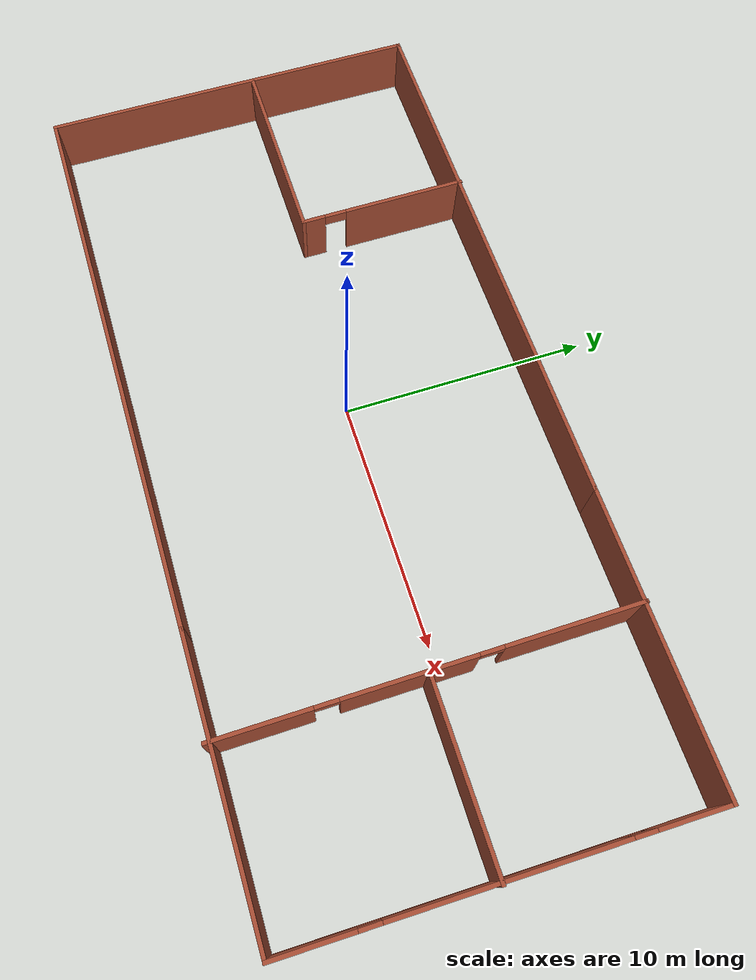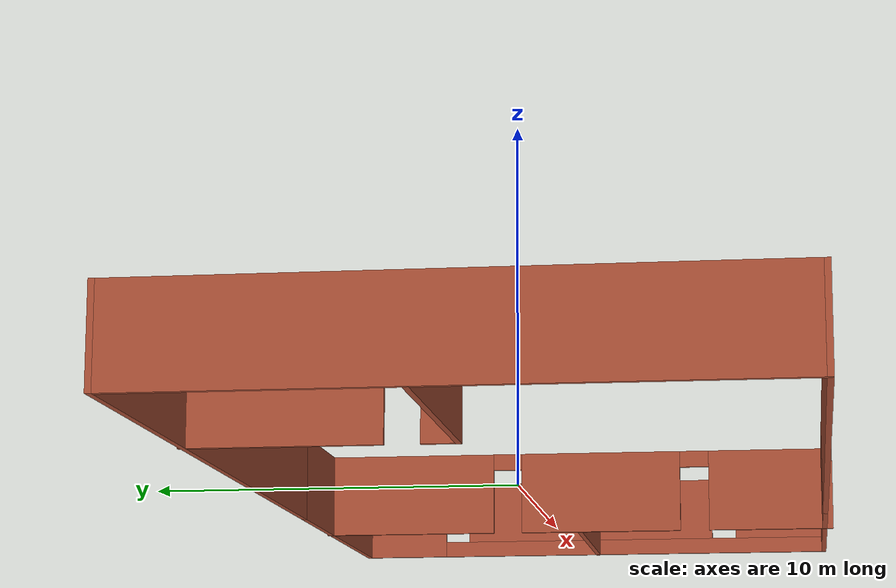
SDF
<?xml version='1.0'?>
<sdf version='1.6'>
  <model name='home'>
    <pose frame=''>1.27088 -0.535738 0 0 -0 0</pose>
    <link name='Wall_0'>
      <collision name='Wall_0_Collision'>
        <geometry>
          <box>
            <size>22.5 0.15 2.5</size>
          </box>
        </geometry>
        <pose frame=''>0 0 1.25 0 -0 0</pose>
      </collision>
      <visual name='Wall_0_Visual'>
        <pose frame=''>0 0 1.25 0 -0 0</pose>
        <geometry>
          <box>
            <size>22.5 0.15 2.5</size>
          </box>
        </geometry>
        <material>
          <script>
            <uri>file://media/materials/scripts/gazebo.material</uri>
            <name>Gazebo/Bricks</name>
          </script>
          <ambient>1 1 1 1</ambient>
        </material>
        <meta>
          <layer>0</layer>
        </meta>
      </visual>
      <pose frame=''>-5.67545 7.86796 0 0 -0 3.14159</pose>
    </link>
    <link name='Wall_1'>
      <collision name='Wall_1_Collision'>
        <geometry>
          <box>
            <size>15.75 0.15 2.5</size>
          </box>
        </geometry>
        <pose frame=''>0 0 1.25 0 -0 0</pose>
      </collision>
      <visual name='Wall_1_Visual'>
        <pose frame=''>0 0 1.25 0 -0 0</pose>
        <geometry>
          <box>
            <size>15.75 0.15 2.5</size>
          </box>
        </geometry>
        <material>
          <script>
            <uri>file://media/materials/scripts/gazebo.material</uri>
            <name>Gazebo/Bricks</name>
          </script>
          <ambient>1 1 1 1</ambient>
        </material>
        <meta>
          <layer>0</layer>
        </meta>
      </visual>
      <pose frame=''>-16.8504 0.067958 0 0 0 -1.5708</pose>
    </link>
    <link name='Wall_11'>
      <pose frame=''>9.90372 0 0 0 0 -1.5708</pose>
      <visual name='Wall_11_Visual_0'>
        <pose frame=''>-5.32645 0 1.25 0 -0 0</pose>
        <geometry>
          <box>
            <size>5.34709 0.15 2.5</size>
          </box>
        </geometry>
        <material>
          <script>
            <uri>file://media/materials/scripts/gazebo.material</uri>
            <name>Gazebo/Bricks</name>
          </script>
          <ambient>1 1 1 1</ambient>
        </material>
        <meta>
          <layer>0</layer>
        </meta>
      </visual>
      <collision name='Wall_11_Collision_0'>
        <geometry>
          <box>
            <size>5.34709 0.15 2.5</size>
          </box>
        </geometry>
        <pose frame=''>-5.32645 0 1.25 0 -0 0</pose>
      </collision>
      <visual name='Wall_11_Visual_1'>
        <pose frame=''>0.75043 0 1.25 0 -0 0</pose>
        <geometry>
          <box>
            <size>5.00668 0.15 2.5</size>
          </box>
        </geometry>
        <material>
          <script>
            <uri>file://media/materials/scripts/gazebo.material</uri>
            <name>Gazebo/Bricks</name>
          </script>
          <ambient>1 1 1 1</ambient>
        </material>
        <meta>
          <layer>0</layer>
        </meta>
      </visual>
      <collision name='Wall_11_Collision_1'>
        <geometry>
          <box>
            <size>5.00668 0.15 2.5</size>
          </box>
        </geometry>
        <pose frame=''>0.75043 0 1.25 0 -0 0</pose>
      </collision>
      <visual name='Wall_11_Visual_2'>
        <pose frame=''>6.07688 0 1.25 0 -0 0</pose>
        <geometry>
          <box>
            <size>3.84623 0.15 2.5</size>
          </box>
        </geometry>
        <material>
          <script>
            <uri>file://media/materials/scripts/gazebo.material</uri>
            <name>Gazebo/Bricks</name>
          </script>
          <ambient>1 1 1 1</ambient>
        </material>
        <meta>
          <layer>0</layer>
        </meta>
      </visual>
      <collision name='Wall_11_Collision_2'>
        <geometry>
          <box>
            <size>3.84623 0.15 2.5</size>
          </box>
        </geometry>
        <pose frame=''>6.07688 0 1.25 0 -0 0</pose>
      </collision>
      <visual name='Wall_11_Visual_3'>
        <pose frame=''>-2.20291 0 2.25 0 -0 0</pose>
        <geometry>
          <box>
            <size>0.9 0.15 0.5</size>
          </box>
        </geometry>
        <material>
          <script>
            <uri>file://media/materials/scripts/gazebo.material</uri>
            <name>Gazebo/Bricks</name>
          </script>
          <ambient>1 1 1 1</ambient>
        </material>
        <meta>
          <layer>0</layer>
        </meta>
      </visual>
      <collision name='Wall_11_Collision_3'>
        <geometry>
          <box>
            <size>0.9 0.15 0.5</size>
          </box>
        </geometry>
        <pose frame=''>-2.20291 0 2.25 0 -0 0</pose>
      </collision>
      <visual name='Wall_11_Visual_4'>
        <pose frame=''>3.70377 0 2.25 0 -0 0</pose>
        <geometry>
          <box>
            <size>0.9 0.15 0.5</size>
          </box>
        </geometry>
        <material>
          <script>
            <uri>file://media/materials/scripts/gazebo.material</uri>
            <name>Gazebo/Bricks</name>
          </script>
          <ambient>1 1 1 1</ambient>
        </material>
        <meta>
          <layer>0</layer>
        </meta>
      </visual>
      <collision name='Wall_11_Collision_4'>
        <geometry>
          <box>
            <size>0.9 0.15 0.5</size>
          </box>
        </geometry>
        <pose frame=''>3.70377 0 2.25 0 -0 0</pose>
      </collision>
    </link>
    <link name='Wall_13'>
      <collision name='Wall_13_Collision'>
        <geometry>
          <box>
            <size>7 0.15 2.5</size>
          </box>
        </geometry>
        <pose frame=''>0 0 1.25 0 -0 0</pose>
      </collision>
      <visual name='Wall_13_Visual'>
        <pose frame=''>0 0 1.25 0 -0 0</pose>
        <geometry>
          <box>
            <size>7 0.15 2.5</size>
          </box>
        </geometry>
        <material>
          <script>
            <uri>file://media/materials/scripts/gazebo.material</uri>
            <name>Gazebo/Bricks</name>
          </script>
          <ambient>1 1 1 1</ambient>
        </material>
        <meta>
          <layer>0</layer>
        </meta>
      </visual>
      <pose frame=''>13.3902 -0.073624 0 0 -0 0</pose>
    </link>
    <link name='Wall_15'>
      <pose frame=''>-8.92381 4.5 0 0 0 -1.5708</pose>
      <visual name='Wall_15_Visual_0'>
        <pose frame=''>-0.949509 0 1.25 0 -0 0</pose>
        <geometry>
          <box>
            <size>5.10098 0.15 2.5</size>
          </box>
        </geometry>
        <material>
          <script>
            <uri>file://media/materials/scripts/gazebo.material</uri>
            <name>Gazebo/Bricks</name>
          </script>
          <ambient>1 1 1 1</ambient>
        </material>
        <meta>
          <layer>0</layer>
        </meta>
      </visual>
      <collision name='Wall_15_Collision_0'>
        <geometry>
          <box>
            <size>5.10098 0.15 2.5</size>
          </box>
        </geometry>
        <pose frame=''>-0.949509 0 1.25 0 -0 0</pose>
      </collision>
      <visual name='Wall_15_Visual_1'>
        <pose frame=''>3.00049 0 1.25 0 -0 0</pose>
        <geometry>
          <box>
            <size>0.999019 0.15 2.5</size>
          </box>
        </geometry>
        <material>
          <script>
            <uri>file://media/materials/scripts/gazebo.material</uri>
            <name>Gazebo/Bricks</name>
          </script>
          <ambient>1 1 1 1</ambient>
        </material>
        <meta>
          <layer>0</layer>
        </meta>
      </visual>
      <collision name='Wall_15_Collision_1'>
        <geometry>
          <box>
            <size>0.999019 0.15 2.5</size>
          </box>
        </geometry>
        <pose frame=''>3.00049 0 1.25 0 -0 0</pose>
      </collision>
      <visual name='Wall_15_Visual_2'>
        <pose frame=''>2.05098 0 2.25 0 -0 0</pose>
        <geometry>
          <box>
            <size>0.9 0.15 0.5</size>
          </box>
        </geometry>
        <material>
          <script>
            <uri>file://media/materials/scripts/gazebo.material</uri>
            <name>Gazebo/Bricks</name>
          </script>
          <ambient>1 1 1 1</ambient>
        </material>
        <meta>
          <layer>0</layer>
        </meta>
      </visual>
      <collision name='Wall_15_Collision_2'>
        <geometry>
          <box>
            <size>0.9 0.15 0.5</size>
          </box>
        </geometry>
        <pose frame=''>2.05098 0 2.25 0 -0 0</pose>
      </collision>
    </link>
    <link name='Wall_16'>
      <collision name='Wall_16_Collision'>
        <geometry>
          <box>
            <size>8 0.15 2.5</size>
          </box>
        </geometry>
        <pose frame=''>0 0 1.25 0 -0 0</pose>
      </collision>
      <visual name='Wall_16_Visual'>
        <pose frame=''>0 0 1.25 0 -0 0</pose>
        <geometry>
          <box>
            <size>8 0.15 2.5</size>
          </box>
        </geometry>
        <material>
          <script>
            <uri>file://media/materials/scripts/gazebo.material</uri>
            <name>Gazebo/Bricks</name>
          </script>
          <ambient>1 1 1 1</ambient>
        </material>
        <meta>
          <layer>0</layer>
        </meta>
      </visual>
      <pose frame=''>-12.8488 1.075 0 0 -0 3.14159</pose>
    </link>
    <link name='Wall_2'>
      <collision name='Wall_2_Collision'>
        <geometry>
          <box>
            <size>23 0.15 2.5</size>
          </box>
        </geometry>
        <pose frame=''>0 0 1.25 0 -0 0</pose>
      </collision>
      <visual name='Wall_2_Visual'>
        <pose frame=''>0 0 1.25 0 -0 0</pose>
        <geometry>
          <box>
            <size>23 0.15 2.5</size>
          </box>
        </geometry>
        <material>
          <script>
            <uri>file://media/materials/scripts/gazebo.material</uri>
            <name>Gazebo/Bricks</name>
          </script>
          <ambient>1 1 1 1</ambient>
        </material>
        <meta>
          <layer>0</layer>
        </meta>
      </visual>
      <pose frame=''>-5.42545 -7.73204 0 0 -0 0</pose>
    </link>
    <link name='Wall_5'>
      <collision name='Wall_5_Collision'>
        <geometry>
          <box>
            <size>11.5 0.15 2.5</size>
          </box>
        </geometry>
        <pose frame=''>0 0 1.25 0 -0 0</pose>
      </collision>
      <visual name='Wall_5_Visual'>
        <pose frame=''>0 0 1.25 0 -0 0</pose>
        <geometry>
          <box>
            <size>11.5 0.15 2.5</size>
          </box>
        </geometry>
        <material>
          <script>
            <uri>file://media/materials/scripts/gazebo.material</uri>
            <name>Gazebo/Bricks</name>
          </script>
          <ambient>1 1 1 1</ambient>
        </material>
        <meta>
          <layer>0</layer>
        </meta>
      </visual>
      <pose frame=''>11.1746 7.86796 0 0 -0 0</pose>
    </link>
    <link name='Wall_6'>
      <pose frame=''>16.756 0.067958 0 0 0 -1.58279</pose>
      <visual name='Wall_6_Visual_0'>
        <pose frame=''>-6.4974 0 1.25 0 -0 0</pose>
        <geometry>
          <box>
            <size>2.75631 0.15 2.5</size>
          </box>
        </geometry>
        <material>
          <script>
            <uri>file://media/materials/scripts/gazebo.material</uri>
            <name>Gazebo/Bricks</name>
          </script>
          <ambient>1 1 1 1</ambient>
        </material>
        <meta>
          <layer>0</layer>
        </meta>
      </visual>
      <collision name='Wall_6_Collision_0'>
        <geometry>
          <box>
            <size>2.75631 0.15 2.5</size>
          </box>
        </geometry>
        <pose frame=''>-6.4974 0 1.25 0 -0 0</pose>
      </collision>
      <visual name='Wall_6_Visual_1'>
        <pose frame=''>1.37816 0 0.25 0 -0 0</pose>
        <geometry>
          <box>
            <size>12.9948 0.15 0.5</size>
          </box>
        </geometry>
        <material>
          <script>
            <uri>file://media/materials/scripts/gazebo.material</uri>
            <name>Gazebo/Bricks</name>
          </script>
          <ambient>1 1 1 1</ambient>
        </material>
        <meta>
          <layer>0</layer>
        </meta>
      </visual>
      <collision name='Wall_6_Collision_1'>
        <geometry>
          <box>
            <size>12.9948 0.15 0.5</size>
          </box>
        </geometry>
        <pose frame=''>1.37816 0 0.25 0 -0 0</pose>
      </collision>
      <visual name='Wall_6_Visual_2'>
        <pose frame=''>-0.135012 0 1.5 0 -0 0</pose>
        <geometry>
          <box>
            <size>8.36847 0.15 2</size>
          </box>
        </geometry>
        <material>
          <script>
            <uri>file://media/materials/scripts/gazebo.material</uri>
            <name>Gazebo/Bricks</name>
          </script>
          <ambient>1 1 1 1</ambient>
        </material>
        <meta>
          <layer>0</layer>
        </meta>
      </visual>
      <collision name='Wall_6_Collision_2'>
        <geometry>
          <box>
            <size>8.36847 0.15 2</size>
          </box>
        </geometry>
        <pose frame=''>-0.135012 0 1.5 0 -0 0</pose>
      </collision>
      <visual name='Wall_6_Visual_3'>
        <pose frame=''>6.36239 0 1.5 0 -0 0</pose>
        <geometry>
          <box>
            <size>3.02634 0.15 2</size>
          </box>
        </geometry>
        <material>
          <script>
            <uri>file://media/materials/scripts/gazebo.material</uri>
            <name>Gazebo/Bricks</name>
          </script>
          <ambient>1 1 1 1</ambient>
        </material>
        <meta>
          <layer>0</layer>
        </meta>
      </visual>
      <collision name='Wall_6_Collision_3'>
        <geometry>
          <box>
            <size>3.02634 0.15 2</size>
          </box>
        </geometry>
        <pose frame=''>6.36239 0 1.5 0 -0 0</pose>
      </collision>
      <visual name='Wall_6_Visual_4'>
        <pose frame=''>-4.71925 0 1.9 0 -0 0</pose>
        <geometry>
          <box>
            <size>0.8 0.15 1.2</size>
          </box>
        </geometry>
        <material>
          <script>
            <uri>file://media/materials/scripts/gazebo.material</uri>
            <name>Gazebo/Bricks</name>
          </script>
          <ambient>1 1 1 1</ambient>
        </material>
        <meta>
          <layer>0</layer>
        </meta>
      </visual>
      <collision name='Wall_6_Collision_4'>
        <geometry>
          <box>
            <size>0.8 0.15 1.2</size>
          </box>
        </geometry>
        <pose frame=''>-4.71925 0 1.9 0 -0 0</pose>
      </collision>
      <visual name='Wall_6_Visual_5'>
        <pose frame=''>4.44922 0 1.9 0 -0 0</pose>
        <geometry>
          <box>
            <size>0.8 0.15 1.2</size>
          </box>
        </geometry>
        <material>
          <script>
            <uri>file://media/materials/scripts/gazebo.material</uri>
            <name>Gazebo/Bricks</name>
          </script>
          <ambient>1 1 1 1</ambient>
        </material>
        <meta>
          <layer>0</layer>
        </meta>
      </visual>
      <collision name='Wall_6_Collision_5'>
        <geometry>
          <box>
            <size>0.8 0.15 1.2</size>
          </box>
        </geometry>
        <pose frame=''>4.44922 0 1.9 0 -0 0</pose>
      </collision>
    </link>
    <link name='Wall_9'>
      <collision name='Wall_9_Collision'>
        <geometry>
          <box>
            <size>10.8128 0.15 2.5</size>
          </box>
        </geometry>
        <pose frame=''>0 0 1.25 0 -0 0</pose>
      </collision>
      <visual name='Wall_9_Visual'>
        <pose frame=''>0 0 1.25 0 -0 0</pose>
        <geometry>
          <box>
            <size>10.8128 0.15 2.5</size>
          </box>
        </geometry>
        <material>
          <script>
            <uri>file://media/materials/scripts/gazebo.material</uri>
            <name>Gazebo/Bricks</name>
          </script>
          <ambient>1 1 1 1</ambient>
        </material>
        <meta>
          <layer>0</layer>
        </meta>
      </visual>
      <pose frame=''>11.331 -7.73204 0 0 -0 0</pose>
    </link>
    <static>1</static>
  </model>
</sdf>
